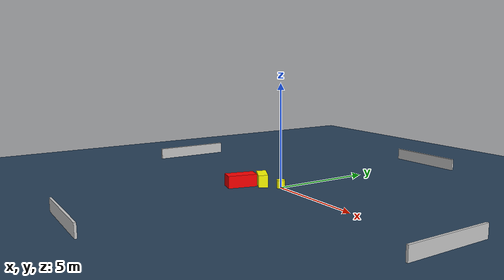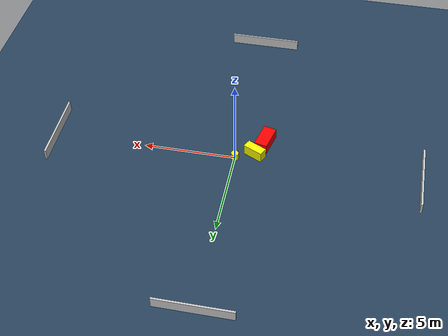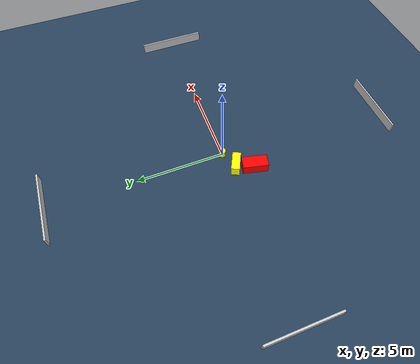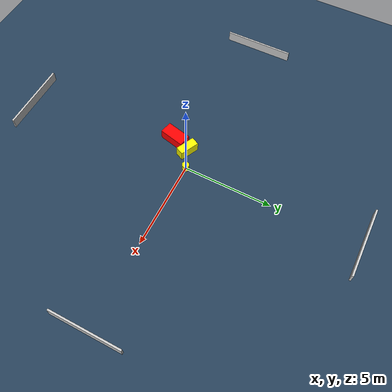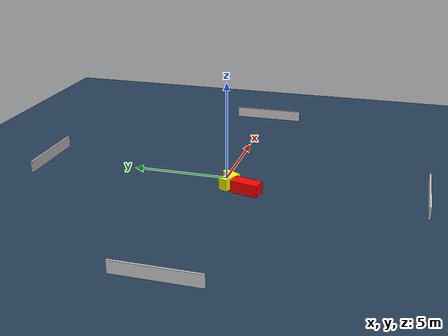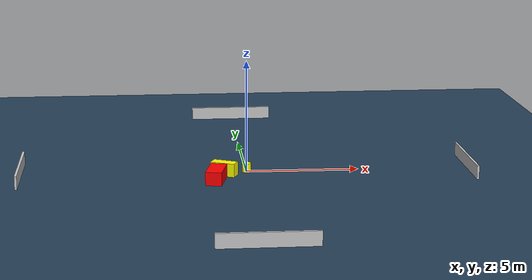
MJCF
<?xml version="1.0" ?>
<mujoco model="generated_environment">
  <option timestep="0.01" integrator="RK4" cone="elliptic"/>
  <default>
    <geom density="1"/>
  </default>
  <asset>
    <texture builtin="gradient" height="3072" name="skybox" rgb1="0.3 0.5 0.7" rgb2="0 0 0" type="skybox" width="512"/>
    <texture builtin="checker" height="300" name="groundplane" rgb1="0.2 0.3 0.4" rgb2="0.1 0.2 0.3" type="2d" width="300"/>
    <material name="groundplane" reflectance="0.2" texrepeat="5 5" texture="groundplane"/>
  </asset>
  <worldbody>
    <light dir="0 0 -1" directional="true" pos="0 0 1.5"/>
    <geom condim="3" friction="0.5 0.005 0.001" material="groundplane" name="floor" pos="0 0 0" size="0 0 0.05" type="plane"/>
    <body name="walls">
      <geom name="wall_1" condim="4" pos="-10.0 0.0 0.3" rgba="0.800000011920929 0.800000011920929 0.800000011920929 1.0" size="0.05 2.0 0.3" type="box"/>
      <geom name="wall_2" condim="4" pos="10.0 0.0 0.3" rgba="0.800000011920929 0.800000011920929 0.800000011920929 1.0" size="0.05 2.0 0.3" type="box"/>
      <geom name="wall_3" condim="4" pos="0.0 -10.0 0.3" rgba="0.800000011920929 0.800000011920929 0.800000011920929 1.0" size="2.0 0.05 0.3" type="box"/>
      <geom name="wall_4" condim="4" pos="0.0 10.0 0.3" rgba="0.800000011920929 0.800000011920929 0.800000011920929 1.0" size="2.0 0.05 0.3" type="box"/>
    </body>
    <body name="robot">
      <joint name="joint_x" type="slide" pos="0 0 0" axis="1 0 0"/>
      <joint name="joint_y" type="slide" pos="0 0 0" axis="0 1 0"/>
      <geom name="robot" type="cylinder" pos="0.0 0.0 0.2" size="0.2 0.2 0.0" mass="5.0" friction="1.0 0.005 0.0001" condim="4" rgba="1.0 1.0 0.0 1.0"/>
    </body>
    <body name="obstacle_1_movable">
      <geom name="obstacle_1_movable" condim="4" pos="-1.0199040505461303 -0.4257517741782504 0.3" euler="0 0 244.1632482798201" friction="0.0 0.005 0.001" rgba="1.0 1.0 0.0 1.0" size="0.2389561981434481 0.5561409088395861 0.3" type="box" mass="0.1"/>
      <joint type="free"/>
    </body>
    <body name="obstacle_2_static">
      <geom name="obstacle_2_static" condim="4" pos="-1.4281541780300337 -1.3905507211968566 0.3" euler="0 0 256.8394448445425" friction="0.0 0.005 0.001" rgba="1.0 0.0 0.0 1.0" size="0.7133603736938166 0.3550302018396728 0.3" type="box"/>
    </body>
  </worldbody>
  <actuator>
    <motor name="actuator_x" joint="joint_x" gear="1" ctrlrange="-1 1"/>
    <motor name="actuator_y" joint="joint_y" gear="1" ctrlrange="-1 1"/>
  </actuator>
</mujoco>
